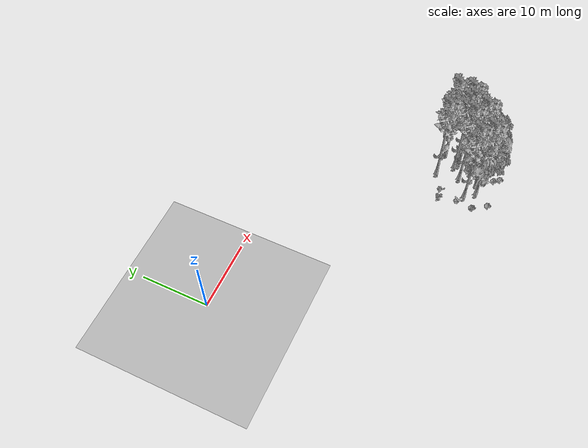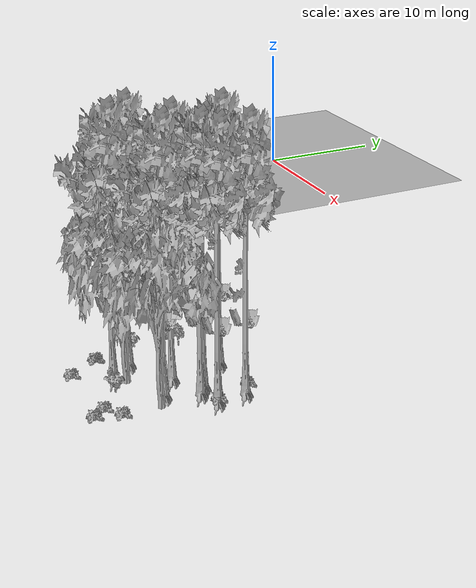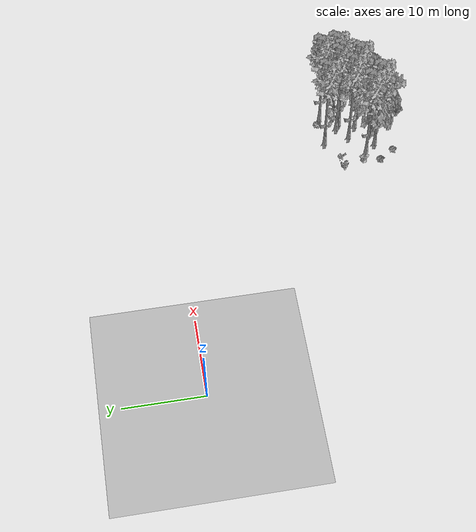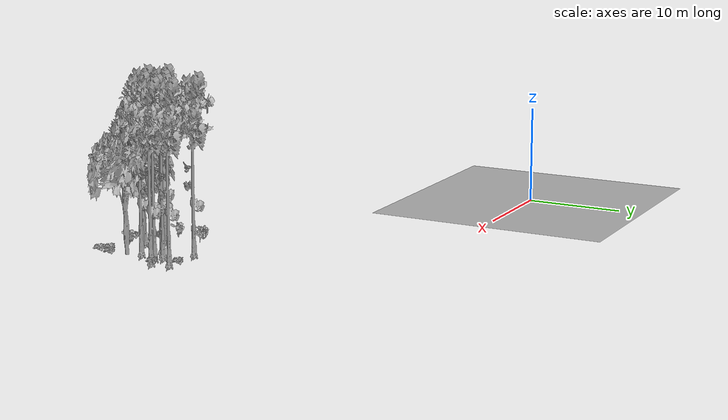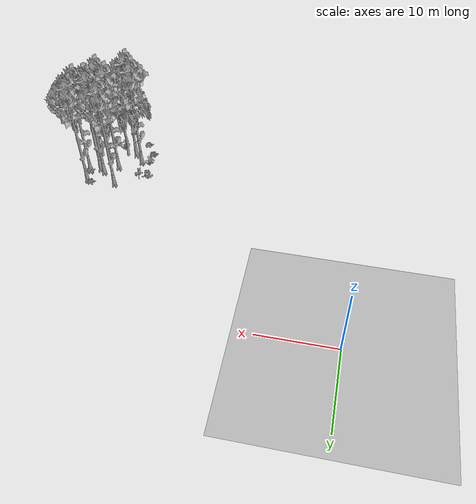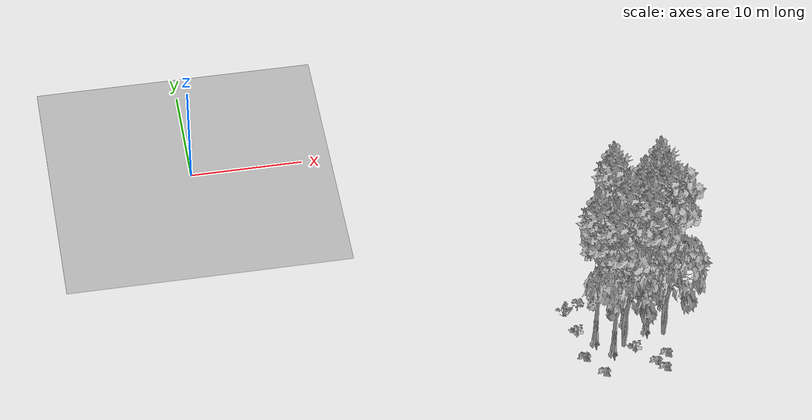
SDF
<sdf version="1.7">
 <world name="default">
  <model name="ground_plane">
   <static>1</static>
   <link name="link">
    <collision name="collision">
     <pose>-50 0 0 0 -0 0</pose>
     <geometry><plane><normal>0 0 1</normal><size>80 80</size></plane></geometry>
     <surface><contact><ode><min_depth>0.01</min_depth><max_vel>0</max_vel></ode></contact></surface>
    </collision>
    <visual name="grass">
     <cast_shadows>0</cast_shadows>
     <geometry>
      <mesh>
       <scale>0.46714285714285714 0.46714285714285714 0.1</scale>
       <uri>file://grass_plane/meshes/grass_plane.dae</uri>
      </mesh>
     </geometry>
    </visual>
   </link>
  </model>
  <model name="Tree 48">
   <static>1</static>
   <pose>37.71561775441853 -20.682305624079724 0 1.57079 -0 0</pose>
   <link name="link">
    <collision name="collision">
     <geometry><mesh><scale>3.5 5 3.5</scale><uri>model://tree_9/meshes/tree_9.obj</uri></mesh></geometry>
    </collision>
    <visual name="visual">
     <geometry><mesh><scale>3.5 5 3.5</scale><uri>model://tree_9/meshes/tree_9.obj</uri></mesh></geometry>
    </visual>
   </link>
  </model>
  <model name="Tree 58">
   <static>1</static>
   <pose>37.94288238660326 -22.577268683996856 0 1.57079 -0 0</pose>
   <link name="link">
    <collision name="collision">
     <geometry><mesh><scale>3.5 5 3.5</scale><uri>model://tree_9/meshes/tree_9.obj</uri></mesh></geometry>
    </collision>
    <visual name="visual">
     <geometry><mesh><scale>3.5 5 3.5</scale><uri>model://tree_9/meshes/tree_9.obj</uri></mesh></geometry>
    </visual>
   </link>
  </model>
  <model name="Tree 108">
   <static>1</static>
   <pose>33.51571762772443 -26.687623073757756 0 1.57079 -0 0</pose>
   <link name="link">
    <collision name="collision">
     <geometry><mesh><scale>3.5 5 3.5</scale><uri>model://tree_2/meshes/tree_2.obj</uri></mesh></geometry>
    </collision>
    <visual name="visual">
     <geometry><mesh><scale>3.5 5 3.5</scale><uri>model://tree_2/meshes/tree_2.obj</uri></mesh></geometry>
    </visual>
   </link>
  </model>
  <model name="Tree 161">
   <static>1</static>
   <pose>32.57480849872182 -27.16061490474921 0 1.57079 -0 0</pose>
   <link name="link">
    <collision name="collision">
     <geometry><mesh><scale>3.5 5 3.5</scale><uri>model://tree_9/meshes/tree_9.obj</uri></mesh></geometry>
    </collision>
    <visual name="visual">
     <geometry><mesh><scale>3.5 5 3.5</scale><uri>model://tree_9/meshes/tree_9.obj</uri></mesh></geometry>
    </visual>
   </link>
  </model>
  <model name="Tree 175">
   <static>1</static>
   <pose>36.61216211339955 -23.11566515353423 0 1.57079 -0 0</pose>
   <link name="link">
    <collision name="collision">
     <geometry><mesh><scale>3.5 5 3.5</scale><uri>model://tree_9/meshes/tree_9.obj</uri></mesh></geometry>
    </collision>
    <visual name="visual">
     <geometry><mesh><scale>3.5 5 3.5</scale><uri>model://tree_9/meshes/tree_9.obj</uri></mesh></geometry>
    </visual>
   </link>
  </model>
  <model name="Tree 220">
   <static>1</static>
   <pose>37.169487080061955 -25.869677225659657 0 1.57079 -0 0</pose>
   <link name="link">
    <collision name="collision">
     <geometry><mesh><scale>3.5 5 3.5</scale><uri>model://tree_2/meshes/tree_2.obj</uri></mesh></geometry>
    </collision>
    <visual name="visual">
     <geometry><mesh><scale>3.5 5 3.5</scale><uri>model://tree_2/meshes/tree_2.obj</uri></mesh></geometry>
    </visual>
   </link>
  </model>
  <model name="Tree 356">
   <static>1</static>
   <pose>34.207947958034154 -23.98701970264075 0 1.57079 -0 0</pose>
   <link name="link">
    <collision name="collision">
     <geometry><mesh><scale>3.5 5 3.5</scale><uri>model://tree_9/meshes/tree_9.obj</uri></mesh></geometry>
    </collision>
    <visual name="visual">
     <geometry><mesh><scale>3.5 5 3.5</scale><uri>model://tree_9/meshes/tree_9.obj</uri></mesh></geometry>
    </visual>
   </link>
  </model>
  <model name="Tree 416">
   <static>1</static>
   <pose>35.92299172308542 -22.634874140089014 0 1.57079 -0 0</pose>
   <link name="link">
    <collision name="collision">
     <geometry><mesh><scale>3.5 5 3.5</scale><uri>model://tree_9/meshes/tree_9.obj</uri></mesh></geometry>
    </collision>
    <visual name="visual">
     <geometry><mesh><scale>3.5 5 3.5</scale><uri>model://tree_9/meshes/tree_9.obj</uri></mesh></geometry>
    </visual>
   </link>
  </model>
  <model name="Tree 479">
   <static>1</static>
   <pose>35.88242233289267 -25.156811911652206 0 1.57079 -0 0</pose>
   <link name="link">
    <collision name="collision">
     <geometry><mesh><scale>3.5 5 3.5</scale><uri>model://tree_9/meshes/tree_9.obj</uri></mesh></geometry>
    </collision>
    <visual name="visual">
     <geometry><mesh><scale>3.5 5 3.5</scale><uri>model://tree_9/meshes/tree_9.obj</uri></mesh></geometry>
    </visual>
   </link>
  </model>
  <model name="Tree 480">
   <static>1</static>
   <pose>33.7144324986499 -20.609955152909194 0 1.57079 -0 0</pose>
   <link name="link">
    <collision name="collision">
     <geometry><mesh><scale>3.5 5 3.5</scale><uri>model://tree_9/meshes/tree_9.obj</uri></mesh></geometry>
    </collision>
    <visual name="visual">
     <geometry><mesh><scale>3.5 5 3.5</scale><uri>model://tree_9/meshes/tree_9.obj</uri></mesh></geometry>
    </visual>
   </link>
  </model>
  <model name="Tree 539">
   <static>1</static>
   <pose>31.305847225743847 -25.71525729195941 0 1.57079 -0 0</pose>
   <link name="link">
    <collision name="collision">
     <geometry><mesh><scale>3.5 5 3.5</scale><uri>model://tree_9/meshes/tree_9.obj</uri></mesh></geometry>
    </collision>
    <visual name="visual">
     <geometry><mesh><scale>3.5 5 3.5</scale><uri>model://tree_9/meshes/tree_9.obj</uri></mesh></geometry>
    </visual>
   </link>
  </model>
  <model name="Bush 28">
   <static>1</static>
   <pose>36.52051458790646 -29.704049107072812 0 1.57079 -0 0</pose>
   <link name="link">
    <collision name="collision">
     <geometry><mesh><scale>2 2 2</scale><uri>model://bush_2/meshes/bush_2.obj</uri></mesh></geometry>
     <surface><contact><collide_without_contact>false</collide_without_contact></contact></surface>
    </collision>
    <visual name="visual">
     <geometry><mesh><scale>2 2 2</scale><uri>model://bush_2/meshes/bush_2.obj</uri></mesh></geometry>
    </visual>
   </link>
  </model>
  <model name="Bush 42">
   <static>1</static>
   <pose>34.40980056518633 -27.659248228339308 0 1.57079 -0 0</pose>
   <link name="link">
    <collision name="collision">
     <geometry><mesh><scale>2 2 2</scale><uri>model://bush_0/meshes/bush_0.obj</uri></mesh></geometry>
     <surface><contact><collide_without_contact>false</collide_without_contact></contact></surface>
    </collision>
    <visual name="visual">
     <geometry><mesh><scale>2 2 2</scale><uri>model://bush_0/meshes/bush_0.obj</uri></mesh></geometry>
    </visual>
   </link>
  </model>
  <model name="Bush 74">
   <static>1</static>
   <pose>29.98589107399036 -27.440097953502836 0 1.57079 -0 0</pose>
   <link name="link">
    <collision name="collision">
     <geometry><mesh><scale>2 2 2</scale><uri>model://bush_2/meshes/bush_2.obj</uri></mesh></geometry>
     <surface><contact><collide_without_contact>false</collide_without_contact></contact></surface>
    </collision>
    <visual name="visual">
     <geometry><mesh><scale>2 2 2</scale><uri>model://bush_2/meshes/bush_2.obj</uri></mesh></geometry>
    </visual>
   </link>
  </model>
  <model name="Bush 91">
   <static>1</static>
   <pose>35.91409544904704 -28.911798318654725 0 1.57079 -0 0</pose>
   <link name="link">
    <collision name="collision">
     <geometry><mesh><scale>2 2 2</scale><uri>model://bush_2/meshes/bush_2.obj</uri></mesh></geometry>
     <surface><contact><collide_without_contact>false</collide_without_contact></contact></surface>
    </collision>
    <visual name="visual">
     <geometry><mesh><scale>2 2 2</scale><uri>model://bush_2/meshes/bush_2.obj</uri></mesh></geometry>
    </visual>
   </link>
  </model>
  <model name="Bush 119">
   <static>1</static>
   <pose>29.332440767036857 -22.473216878947 0 1.57079 -0 0</pose>
   <link name="link">
    <collision name="collision">
     <geometry><mesh><scale>2 2 2</scale><uri>model://bush_4/meshes/bush_4.obj</uri></mesh></geometry>
     <surface><contact><collide_without_contact>false</collide_without_contact></contact></surface>
    </collision>
    <visual name="visual">
     <geometry><mesh><scale>2 2 2</scale><uri>model://bush_4/meshes/bush_4.obj</uri></mesh></geometry>
    </visual>
   </link>
  </model>
  <model name="Bush 158">
   <static>1</static>
   <pose>30.567839189803905 -22.07621682785682 0 1.57079 -0 0</pose>
   <link name="link">
    <collision name="collision">
     <geometry><mesh><scale>2 2 2</scale><uri>model://bush_5/meshes/bush_5.obj</uri></mesh></geometry>
     <surface><contact><collide_without_contact>false</collide_without_contact></contact></surface>
    </collision>
    <visual name="visual">
     <geometry><mesh><scale>2 2 2</scale><uri>model://bush_5/meshes/bush_5.obj</uri></mesh></geometry>
    </visual>
   </link>
  </model>
  <model name="Bush 168">
   <static>1</static>
   <pose>36.97513479706156 -20.231589103107083 0 1.57079 -0 0</pose>
   <link name="link">
    <collision name="collision">
     <geometry><mesh><scale>2 2 2</scale><uri>model://bush_2/meshes/bush_2.obj</uri></mesh></geometry>
     <surface><contact><collide_without_contact>false</collide_without_contact></contact></surface>
    </collision>
    <visual name="visual">
     <geometry><mesh><scale>2 2 2</scale><uri>model://bush_2/meshes/bush_2.obj</uri></mesh></geometry>
    </visual>
   </link>
  </model>
  <model name="Bush 184">
   <static>1</static>
   <pose>37.86857337481207 -22.543261047735818 0 1.57079 -0 0</pose>
   <link name="link">
    <collision name="collision">
     <geometry><mesh><scale>2 2 2</scale><uri>model://bush_2/meshes/bush_2.obj</uri></mesh></geometry>
     <surface><contact><collide_without_contact>false</collide_without_contact></contact></surface>
    </collision>
    <visual name="visual">
     <geometry><mesh><scale>2 2 2</scale><uri>model://bush_2/meshes/bush_2.obj</uri></mesh></geometry>
    </visual>
   </link>
  </model>
  <model name="Bush 216">
   <static>1</static>
   <pose>36.98183582087998 -28.154054678046165 0 1.57079 -0 0</pose>
   <link name="link">
    <collision name="collision">
     <geometry><mesh><scale>2 2 2</scale><uri>model://bush_2/meshes/bush_2.obj</uri></mesh></geometry>
     <surface><contact><collide_without_contact>false</collide_without_contact></contact></surface>
    </collision>
    <visual name="visual">
     <geometry><mesh><scale>2 2 2</scale><uri>model://bush_2/meshes/bush_2.obj</uri></mesh></geometry>
    </visual>
   </link>
  </model>
  <model name="Bush 341">
   <static>1</static>
   <pose>30.01324773427673 -27.52346674710095 0 1.57079 -0 0</pose>
   <link name="link">
    <collision name="collision">
     <geometry><mesh><scale>2 2 2</scale><uri>model://bush_2/meshes/bush_2.obj</uri></mesh></geometry>
     <surface><contact><collide_without_contact>false</collide_without_contact></contact></surface>
    </collision>
    <visual name="visual">
     <geometry><mesh><scale>2 2 2</scale><uri>model://bush_2/meshes/bush_2.obj</uri></mesh></geometry>
    </visual>
   </link>
  </model>
  <model name="Bush 441">
   <static>1</static>
   <pose>29.897672949186585 -25.051640983777077 0 1.57079 -0 0</pose>
   <link name="link">
    <collision name="collision">
     <geometry><mesh><scale>2 2 2</scale><uri>model://bush_0/meshes/bush_0.obj</uri></mesh></geometry>
     <surface><contact><collide_without_contact>false</collide_without_contact></contact></surface>
    </collision>
    <visual name="visual">
     <geometry><mesh><scale>2 2 2</scale><uri>model://bush_0/meshes/bush_0.obj</uri></mesh></geometry>
    </visual>
   </link>
  </model>
  <model name="Bush 442">
   <static>1</static>
   <pose>31.303630362001115 -29.432070639182093 0 1.57079 -0 0</pose>
   <link name="link">
    <collision name="collision">
     <geometry><mesh><scale>2 2 2</scale><uri>model://bush_2/meshes/bush_2.obj</uri></mesh></geometry>
     <surface><contact><collide_without_contact>false</collide_without_contact></contact></surface>
    </collision>
    <visual name="visual">
     <geometry><mesh><scale>2 2 2</scale><uri>model://bush_2/meshes/bush_2.obj</uri></mesh></geometry>
    </visual>
   </link>
  </model>
 </world>
</sdf>
